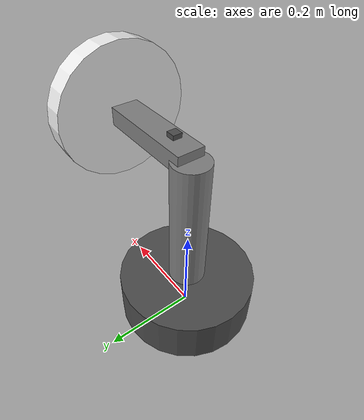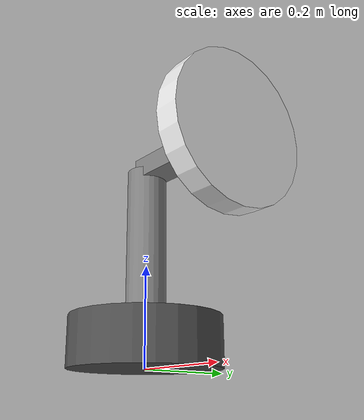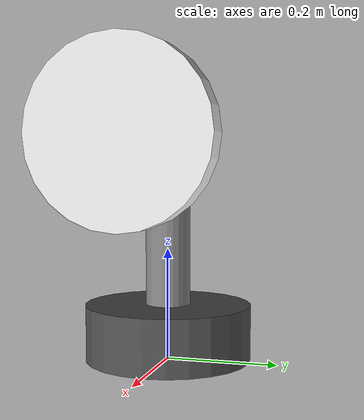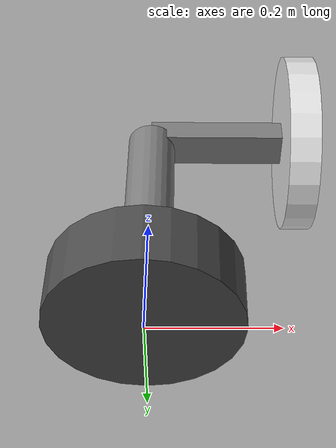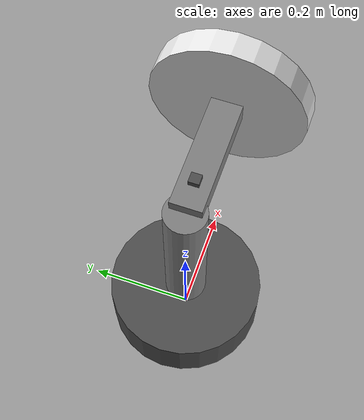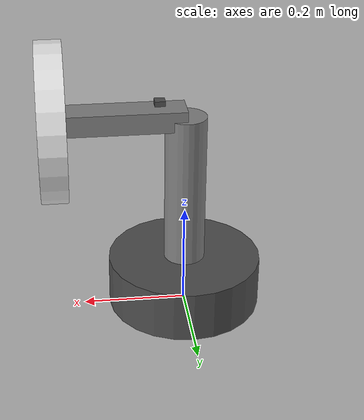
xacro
<?xml version="1.0"?>
<robot xmlns:xacro="http://www.ros.org/wiki/xacro" name="antenna_tracker">

  <!-- Properties -->
  <xacro:property name="base_height" value="0.1"/>
  <xacro:property name="base_radius" value="0.15"/>
  <xacro:property name="column_height" value="0.3"/>
  <xacro:property name="column_radius" value="0.04"/>
  <xacro:property name="arm_length" value="0.25"/>
  <xacro:property name="arm_width" value="0.06"/>
  <xacro:property name="arm_height" value="0.04"/>
  <xacro:property name="antenna_length" value="0.4"/>
  <xacro:property name="antenna_radius" value="0.15"/>

  <!-- Materials -->
  <material name="gray">
    <color rgba="0.5 0.5 0.5 1.0"/>
  </material>
  <material name="dark_gray">
    <color rgba="0.3 0.3 0.3 1.0"/>
  </material>
  <material name="white">
    <color rgba="0.9 0.9 0.9 1.0"/>
  </material>

  <!-- Base Link (fixed to ground) -->
  <link name="base_link">
    <visual>
      <geometry>
        <cylinder radius="${base_radius}" length="${base_height}"/>
      </geometry>
      <origin xyz="0 0 ${base_height/2}" rpy="0 0 0"/>
      <material name="dark_gray"/>
    </visual>
    <collision>
      <geometry>
        <cylinder radius="${base_radius}" length="${base_height}"/>
      </geometry>
      <origin xyz="0 0 ${base_height/2}" rpy="0 0 0"/>
    </collision>
    <inertial>
      <mass value="5.0"/>
      <inertia ixx="0.05" ixy="0" ixz="0" iyy="0.05" iyz="0" izz="0.08"/>
    </inertial>
  </link>

  <!-- Azimuth Link (rotates around Z axis) -->
  <link name="azimuth_link">
    <visual>
      <geometry>
        <cylinder radius="${column_radius}" length="${column_height}"/>
      </geometry>
      <origin xyz="0 0 ${column_height/2}" rpy="0 0 0"/>
      <material name="gray"/>
    </visual>
    <collision>
      <geometry>
        <cylinder radius="${column_radius}" length="${column_height}"/>
      </geometry>
      <origin xyz="0 0 ${column_height/2}" rpy="0 0 0"/>
    </collision>
    <inertial>
      <mass value="2.0"/>
      <inertia ixx="0.02" ixy="0" ixz="0" iyy="0.02" iyz="0" izz="0.005"/>
    </inertial>
  </link>

  <joint name="azimuth_joint" type="revolute">
    <parent link="base_link"/>
    <child link="azimuth_link"/>
    <origin xyz="0 0 ${base_height}" rpy="0 0 0"/>
    <axis xyz="0 0 1"/>
    <limit lower="${-pi}" upper="${pi}" effort="10.0" velocity="3.14159"/>
  </joint>

  <!-- Elevation Link (rotates around Y axis) -->
  <link name="elevation_link">
    <visual>
      <geometry>
        <box size="${arm_length} ${arm_width} ${arm_height}"/>
      </geometry>
      <origin xyz="${arm_length/2} 0 0" rpy="0 0 0"/>
      <material name="gray"/>
    </visual>
    <collision>
      <geometry>
        <box size="${arm_length} ${arm_width} ${arm_height}"/>
      </geometry>
      <origin xyz="${arm_length/2} 0 0" rpy="0 0 0"/>
    </collision>
    <inertial>
      <mass value="1.0"/>
      <inertia ixx="0.005" ixy="0" ixz="0" iyy="0.01" iyz="0" izz="0.01"/>
    </inertial>
  </link>

  <joint name="elevation_joint" type="revolute">
    <parent link="azimuth_link"/>
    <child link="elevation_link"/>
    <origin xyz="0 0 ${column_height}" rpy="0 0 0"/>
    <axis xyz="0 1 0"/>
    <limit lower="0" upper="${pi/2}" effort="10.0" velocity="1.5708"/>
  </joint>

  <!-- Antenna Dish Link -->
  <link name="antenna_link">
    <visual>
      <geometry>
        <cylinder radius="${antenna_radius}" length="0.05"/>
      </geometry>
      <origin xyz="0 0 0" rpy="0 ${pi/2} 0"/>
      <material name="white"/>
    </visual>
    <collision>
      <geometry>
        <cylinder radius="${antenna_radius}" length="0.05"/>
      </geometry>
      <origin xyz="0 0 0" rpy="0 ${pi/2} 0"/>
    </collision>
    <inertial>
      <mass value="0.5"/>
      <inertia ixx="0.003" ixy="0" ixz="0" iyy="0.003" iyz="0" izz="0.005"/>
    </inertial>
  </link>

  <joint name="antenna_joint" type="fixed">
    <parent link="elevation_link"/>
    <child link="antenna_link"/>
    <origin xyz="${arm_length} 0 0" rpy="0 0 0"/>
  </joint>

  <!-- IMU Sensor Link -->
  <link name="imu_link">
    <visual>
      <geometry>
        <box size="0.02 0.02 0.01"/>
      </geometry>
      <material name="dark_gray"/>
    </visual>
    <inertial>
      <mass value="0.01"/>
      <inertia ixx="0.0001" ixy="0" ixz="0" iyy="0.0001" iyz="0" izz="0.0001"/>
    </inertial>
  </link>

  <joint name="imu_joint" type="fixed">
    <parent link="elevation_link"/>
    <child link="imu_link"/>
    <origin xyz="0.05 0 0.03" rpy="0 0 0"/>
  </joint>

  <!-- Gazebo Plugins (Fortress) -->
  <gazebo>
    <plugin filename="ignition-gazebo-joint-state-publisher-system" name="ignition::gazebo::systems::JointStatePublisher">
      <joint_name>azimuth_joint</joint_name>
      <joint_name>elevation_joint</joint_name>
    </plugin>

    <plugin filename="ignition-gazebo-joint-controller-system" name="ignition::gazebo::systems::JointController">
      <joint_name>azimuth_joint</joint_name>
      <topic>/model/antenna_tracker/joint/azimuth_joint/cmd_vel</topic>
    </plugin>

    <plugin filename="ignition-gazebo-joint-controller-system" name="ignition::gazebo::systems::JointController">
      <joint_name>elevation_joint</joint_name>
      <topic>/model/antenna_tracker/joint/elevation_joint/cmd_vel</topic>
    </plugin>

    <!-- Sensor systems -->
    <plugin filename="ignition-gazebo-imu-system" name="ignition::gazebo::systems::Imu"/>
    <plugin filename="ignition-gazebo-navsat-system" name="ignition::gazebo::systems::NavSat"/>
  </gazebo>

  <gazebo reference="imu_link">
    <sensor name="imu_sensor" type="imu">
      <always_on>true</always_on>
      <update_rate>100</update_rate>
      <topic>/imu/raw</topic>
      <imu>
        <angular_velocity>
          <x><noise type="gaussian"><mean>0</mean><stddev>0.001</stddev></noise></x>
          <y><noise type="gaussian"><mean>0</mean><stddev>0.001</stddev></noise></y>
          <z><noise type="gaussian"><mean>0</mean><stddev>0.001</stddev></noise></z>
        </angular_velocity>
        <linear_acceleration>
          <x><noise type="gaussian"><mean>0</mean><stddev>0.01</stddev></noise></x>
          <y><noise type="gaussian"><mean>0</mean><stddev>0.01</stddev></noise></y>
          <z><noise type="gaussian"><mean>0</mean><stddev>0.01</stddev></noise></z>
        </linear_acceleration>
      </imu>
      <!-- Fortress relies on the gz-sim-imu-system above processing this block -->
    </sensor>
  </gazebo>

  <gazebo reference="base_link">
    <sensor name="gps_sensor" type="navsat">
      <always_on>true</always_on>
      <update_rate>1</update_rate>
      <topic>/gps/fix</topic>
    </sensor>
  </gazebo>

</robot>
